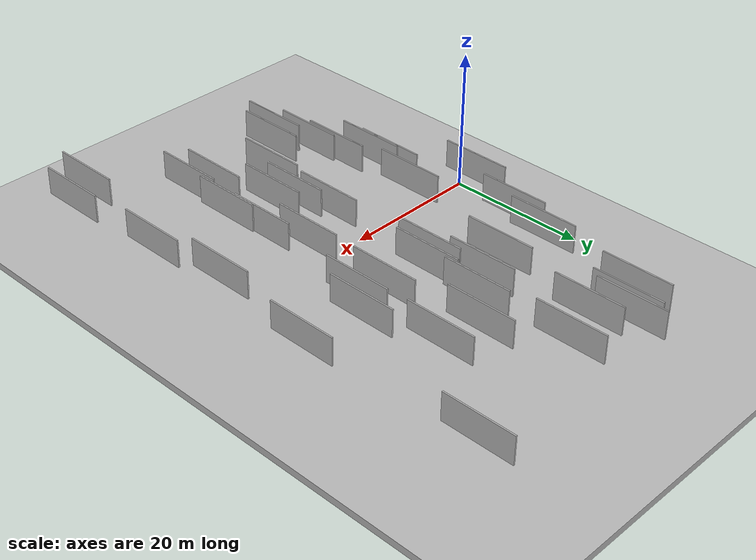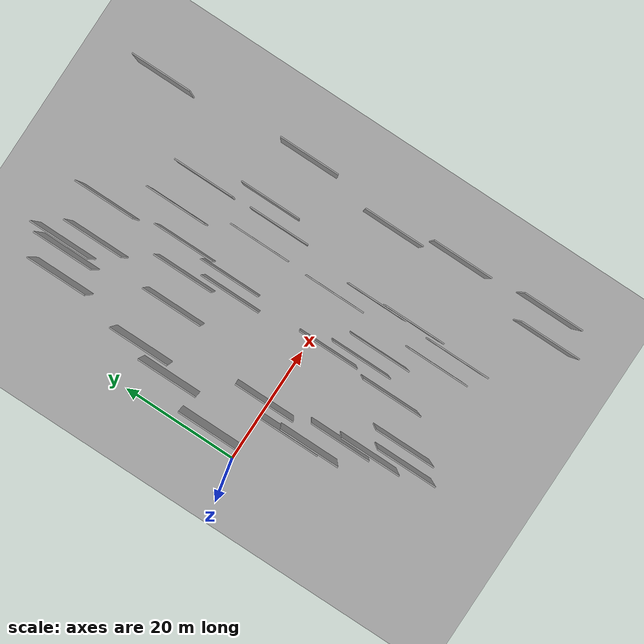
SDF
<?xml version="1.0" encoding="utf-8"?>

<sdf version="1.6">

   <world name="default">

      <gui fullscreen="0">

         <camera name="user_camera">

            <pose>-15 0 4.57585 0 0 0</pose>

            <view_controller>orbit</view_controller>

         </camera>

      </gui>

      <scene>

         <sky>

           <clouds>

             <speed>12</speed>

           </clouds>

         </sky>

         <ambient>0.4 0.4 0.4 1</ambient>

         <background>0.7 0.7 0.7 1</background>

         <shadows>1</shadows>

      </scene>

      <gravity>0 0 -9.8066</gravity>

      <magnetic_field>6e-06 2.3e-05 -4.2e-05</magnetic_field>

      <physics default="0" name="default_physics" type="ode">

         <ode>

            <solver>

               <type>quick</type>

               <iters>10</iters>

               <sor>1.0</sor>

               <use_dynamic_moi_rescaling>0</use_dynamic_moi_rescaling>

            </solver>

            <constraints>

               <cfm>0</cfm>

               <erp>0.2</erp>

               <contact_max_correcting_vel>100</contact_max_correcting_vel>

               <contact_surface_layer>0.001</contact_surface_layer>

            </constraints>

         </ode>

         <max_step_size>0.004</max_step_size>

         <real_time_factor>1</real_time_factor>

         <real_time_update_rate>250</real_time_update_rate>

      </physics>

      <light name="sun" type="directional">

         <cast_shadows>1</cast_shadows>

         <pose>0 0 10 0 0 0</pose>

         <diffuse>0.8 0.8 0.8 1</diffuse>

         <specular>0.2 0.2 0.2 1</specular>

         <attenuation>

            <range>1000</range>

            <constant>0.9</constant>

            <linear>0.01</linear>

            <quadratic>0.001</quadratic>

         </attenuation>

         <direction>-0.5 0.1 -0.9</direction>

      </light>

      <include>

         <name>ground_plane_1</name>

         <uri>model://HANNAS_ground_plane</uri>

         <pose>0 0 0  0 0 0</pose>

      </include>

      <include>

         <name>ground_plane_2</name>

         <uri>model://HANNAS_ground_plane</uri>

         <pose>100 0 0  0 0 0</pose>

      </include>

      <model name="HANNAS_wall_1">

         <static>1</static>

         <pose frame="">22.5671 -13.8953 5.0 0.000000 0.000000 1.570796</pose>

         <link name="link">

            <pose frame="">0 0 2.00 0 0 0</pose>

            <collision name="collision">

               <geometry>

                  <box>

                     <size>10.00 0.2 4.00</size>

                  </box>

               </geometry>

               <max_contacts>10</max_contacts>

               <surface>

                  <contact>

                     <ode/>

                  </contact>

                  <bounce/>

                  <friction>

                     <torsional>

                        <ode/>

                     </torsional>

                     <ode/>

                  </friction>

               </surface>

            </collision>

            <visual name="visual">

               <cast_shadows>0</cast_shadows>

               <geometry>

                  <box>

                     <size>10.00 0.2 4.00</size>

                  </box>

               </geometry>

               <material>

                  <script>

                     <uri>model://HANNAS_wall/materials/scripts</uri>

                     <uri>model://HANNAS_wall/materials/textures</uri>

                     <name>vrc/HANNAS_wall</name>

                  </script>

               </material>

            </visual>

            <self_collide>0</self_collide>

            <enable_wind>0</enable_wind>

            <kinematic>0</kinematic>

         </link>

      </model>

      <model name="HANNAS_wall_2">

         <static>1</static>

         <pose frame="">17.4820 -19.4743 5.0 0.000000 0.000000 1.570796</pose>

         <link name="link">

            <pose frame="">0 0 2.00 0 0 0</pose>

            <collision name="collision">

               <geometry>

                  <box>

                     <size>10.00 0.2 4.00</size>

                  </box>

               </geometry>

               <max_contacts>10</max_contacts>

               <surface>

                  <contact>

                     <ode/>

                  </contact>

                  <bounce/>

                  <friction>

                     <torsional>

                        <ode/>

                     </torsional>

                     <ode/>

                  </friction>

               </surface>

            </collision>

            <visual name="visual">

               <cast_shadows>0</cast_shadows>

               <geometry>

                  <box>

                     <size>10.00 0.2 4.00</size>

                  </box>

               </geometry>

               <material>

                  <script>

                     <uri>model://HANNAS_wall/materials/scripts</uri>

                     <uri>model://HANNAS_wall/materials/textures</uri>

                     <name>vrc/HANNAS_wall</name>

                  </script>

               </material>

            </visual>

            <self_collide>0</self_collide>

            <enable_wind>0</enable_wind>

            <kinematic>0</kinematic>

         </link>

      </model>

      <model name="HANNAS_wall_3">

         <static>1</static>

         <pose frame="">13.1034 -11.2029 5.0 0.000000 0.000000 1.570796</pose>

         <link name="link">

            <pose frame="">0 0 2.00 0 0 0</pose>

            <collision name="collision">

               <geometry>

                  <box>

                     <size>10.00 0.2 4.00</size>

                  </box>

               </geometry>

               <max_contacts>10</max_contacts>

               <surface>

                  <contact>

                     <ode/>

                  </contact>

                  <bounce/>

                  <friction>

                     <torsional>

                        <ode/>

                     </torsional>

                     <ode/>

                  </friction>

               </surface>

            </collision>

            <visual name="visual">

               <cast_shadows>0</cast_shadows>

               <geometry>

                  <box>

                     <size>10.00 0.2 4.00</size>

                  </box>

               </geometry>

               <material>

                  <script>

                     <uri>model://HANNAS_wall/materials/scripts</uri>

                     <uri>model://HANNAS_wall/materials/textures</uri>

                     <name>vrc/HANNAS_wall</name>

                  </script>

               </material>

            </visual>

            <self_collide>0</self_collide>

            <enable_wind>0</enable_wind>

            <kinematic>0</kinematic>

         </link>

      </model>

      <model name="HANNAS_wall_4">

         <static>1</static>

         <pose frame="">15.1864 38.8526 5.0 0.000000 0.000000 1.570796</pose>

         <link name="link">

            <pose frame="">0 0 2.00 0 0 0</pose>

            <collision name="collision">

               <geometry>

                  <box>

                     <size>10.00 0.2 4.00</size>

                  </box>

               </geometry>

               <max_contacts>10</max_contacts>

               <surface>

                  <contact>

                     <ode/>

                  </contact>

                  <bounce/>

                  <friction>

                     <torsional>

                        <ode/>

                     </torsional>

                     <ode/>

                  </friction>

               </surface>

            </collision>

            <visual name="visual">

               <cast_shadows>0</cast_shadows>

               <geometry>

                  <box>

                     <size>10.00 0.2 4.00</size>

                  </box>

               </geometry>

               <material>

                  <script>

                     <uri>model://HANNAS_wall/materials/scripts</uri>

                     <uri>model://HANNAS_wall/materials/textures</uri>

                     <name>vrc/HANNAS_wall</name>

                  </script>

               </material>

            </visual>

            <self_collide>0</self_collide>

            <enable_wind>0</enable_wind>

            <kinematic>0</kinematic>

         </link>

      </model>

      <model name="HANNAS_wall_5">

         <static>1</static>

         <pose frame="">24.1612 15.2622 5.0 0.000000 0.000000 1.570796</pose>

         <link name="link">

            <pose frame="">0 0 2.00 0 0 0</pose>

            <collision name="collision">

               <geometry>

                  <box>

                     <size>10.00 0.2 4.00</size>

                  </box>

               </geometry>

               <max_contacts>10</max_contacts>

               <surface>

                  <contact>

                     <ode/>

                  </contact>

                  <bounce/>

                  <friction>

                     <torsional>

                        <ode/>

                     </torsional>

                     <ode/>

                  </friction>

               </surface>

            </collision>

            <visual name="visual">

               <cast_shadows>0</cast_shadows>

               <geometry>

                  <box>

                     <size>10.00 0.2 4.00</size>

                  </box>

               </geometry>

               <material>

                  <script>

                     <uri>model://HANNAS_wall/materials/scripts</uri>

                     <uri>model://HANNAS_wall/materials/textures</uri>

                     <name>vrc/HANNAS_wall</name>

                  </script>

               </material>

            </visual>

            <self_collide>0</self_collide>

            <enable_wind>0</enable_wind>

            <kinematic>0</kinematic>

         </link>

      </model>

      <model name="HANNAS_wall_6">

         <static>1</static>

         <pose frame="">9.6390 -4.5361 5.0 0.000000 0.000000 1.570796</pose>

         <link name="link">

            <pose frame="">0 0 2.00 0 0 0</pose>

            <collision name="collision">

               <geometry>

                  <box>

                     <size>10.00 0.2 4.00</size>

                  </box>

               </geometry>

               <max_contacts>10</max_contacts>

               <surface>

                  <contact>

                     <ode/>

                  </contact>

                  <bounce/>

                  <friction>

                     <torsional>

                        <ode/>

                     </torsional>

                     <ode/>

                  </friction>

               </surface>

            </collision>

            <visual name="visual">

               <cast_shadows>0</cast_shadows>

               <geometry>

                  <box>

                     <size>10.00 0.2 4.00</size>

                  </box>

               </geometry>

               <material>

                  <script>

                     <uri>model://HANNAS_wall/materials/scripts</uri>

                     <uri>model://HANNAS_wall/materials/textures</uri>

                     <name>vrc/HANNAS_wall</name>

                  </script>

               </material>

            </visual>

            <self_collide>0</self_collide>

            <enable_wind>0</enable_wind>

            <kinematic>0</kinematic>

         </link>

      </model>

      <model name="HANNAS_wall_7">

         <static>1</static>

         <pose frame="">9.9034 -7.8861 5.0 0.000000 0.000000 1.570796</pose>

         <link name="link">

            <pose frame="">0 0 2.00 0 0 0</pose>

            <collision name="collision">

               <geometry>

                  <box>

                     <size>10.00 0.2 4.00</size>

                  </box>

               </geometry>

               <max_contacts>10</max_contacts>

               <surface>

                  <contact>

                     <ode/>

                  </contact>

                  <bounce/>

                  <friction>

                     <torsional>

                        <ode/>

                     </torsional>

                     <ode/>

                  </friction>

               </surface>

            </collision>

            <visual name="visual">

               <cast_shadows>0</cast_shadows>

               <geometry>

                  <box>

                     <size>10.00 0.2 4.00</size>

                  </box>

               </geometry>

               <material>

                  <script>

                     <uri>model://HANNAS_wall/materials/scripts</uri>

                     <uri>model://HANNAS_wall/materials/textures</uri>

                     <name>vrc/HANNAS_wall</name>

                  </script>

               </material>

            </visual>

            <self_collide>0</self_collide>

            <enable_wind>0</enable_wind>

            <kinematic>0</kinematic>

         </link>

      </model>

      <model name="HANNAS_wall_8">

         <static>1</static>

         <pose frame="">28.6589 27.5822 5.0 0.000000 0.000000 1.570796</pose>

         <link name="link">

            <pose frame="">0 0 2.00 0 0 0</pose>

            <collision name="collision">

               <geometry>

                  <box>

                     <size>10.00 0.2 4.00</size>

                  </box>

               </geometry>

               <max_contacts>10</max_contacts>

               <surface>

                  <contact>

                     <ode/>

                  </contact>

                  <bounce/>

                  <friction>

                     <torsional>

                        <ode/>

                     </torsional>

                     <ode/>

                  </friction>

               </surface>

            </collision>

            <visual name="visual">

               <cast_shadows>0</cast_shadows>

               <geometry>

                  <box>

                     <size>10.00 0.2 4.00</size>

                  </box>

               </geometry>

               <material>

                  <script>

                     <uri>model://HANNAS_wall/materials/scripts</uri>

                     <uri>model://HANNAS_wall/materials/textures</uri>

                     <name>vrc/HANNAS_wall</name>

                  </script>

               </material>

            </visual>

            <self_collide>0</self_collide>

            <enable_wind>0</enable_wind>

            <kinematic>0</kinematic>

         </link>

      </model>

      <model name="HANNAS_wall_9">

         <static>1</static>

         <pose frame="">42.0849 -28.4676 5.0 0.000000 0.000000 1.570796</pose>

         <link name="link">

            <pose frame="">0 0 2.00 0 0 0</pose>

            <collision name="collision">

               <geometry>

                  <box>

                     <size>10.00 0.2 4.00</size>

                  </box>

               </geometry>

               <max_contacts>10</max_contacts>

               <surface>

                  <contact>

                     <ode/>

                  </contact>

                  <bounce/>

                  <friction>

                     <torsional>

                        <ode/>

                     </torsional>

                     <ode/>

                  </friction>

               </surface>

            </collision>

            <visual name="visual">

               <cast_shadows>0</cast_shadows>

               <geometry>

                  <box>

                     <size>10.00 0.2 4.00</size>

                  </box>

               </geometry>

               <material>

                  <script>

                     <uri>model://HANNAS_wall/materials/scripts</uri>

                     <uri>model://HANNAS_wall/materials/textures</uri>

                     <name>vrc/HANNAS_wall</name>

                  </script>

               </material>

            </visual>

            <self_collide>0</self_collide>

            <enable_wind>0</enable_wind>

            <kinematic>0</kinematic>

         </link>

      </model>

      <model name="HANNAS_wall_10">

         <static>1</static>

         <pose frame="">27.0926 -8.9381 5.0 0.000000 0.000000 1.570796</pose>

         <link name="link">

            <pose frame="">0 0 2.00 0 0 0</pose>

            <collision name="collision">

               <geometry>

                  <box>

                     <size>10.00 0.2 4.00</size>

                  </box>

               </geometry>

               <max_contacts>10</max_contacts>

               <surface>

                  <contact>

                     <ode/>

                  </contact>

                  <bounce/>

                  <friction>

                     <torsional>

                        <ode/>

                     </torsional>

                     <ode/>

                  </friction>

               </surface>

            </collision>

            <visual name="visual">

               <cast_shadows>0</cast_shadows>

               <geometry>

                  <box>

                     <size>10.00 0.2 4.00</size>

                  </box>

               </geometry>

               <material>

                  <script>

                     <uri>model://HANNAS_wall/materials/scripts</uri>

                     <uri>model://HANNAS_wall/materials/textures</uri>

                     <name>vrc/HANNAS_wall</name>

                  </script>

               </material>

            </visual>

            <self_collide>0</self_collide>

            <enable_wind>0</enable_wind>

            <kinematic>0</kinematic>

         </link>

      </model>

      <model name="HANNAS_wall_11">

         <static>1</static>

         <pose frame="">16.0108 19.9428 5.0 0.000000 0.000000 1.570796</pose>

         <link name="link">

            <pose frame="">0 0 2.00 0 0 0</pose>

            <collision name="collision">

               <geometry>

                  <box>

                     <size>10.00 0.2 4.00</size>

                  </box>

               </geometry>

               <max_contacts>10</max_contacts>

               <surface>

                  <contact>

                     <ode/>

                  </contact>

                  <bounce/>

                  <friction>

                     <torsional>

                        <ode/>

                     </torsional>

                     <ode/>

                  </friction>

               </surface>

            </collision>

            <visual name="visual">

               <cast_shadows>0</cast_shadows>

               <geometry>

                  <box>

                     <size>10.00 0.2 4.00</size>

                  </box>

               </geometry>

               <material>

                  <script>

                     <uri>model://HANNAS_wall/materials/scripts</uri>

                     <uri>model://HANNAS_wall/materials/textures</uri>

                     <name>vrc/HANNAS_wall</name>

                  </script>

               </material>

            </visual>

            <self_collide>0</self_collide>

            <enable_wind>0</enable_wind>

            <kinematic>0</kinematic>

         </link>

      </model>

      <model name="HANNAS_wall_12">

         <static>1</static>

         <pose frame="">44.9426 -11.4799 5.0 0.000000 0.000000 1.570796</pose>

         <link name="link">

            <pose frame="">0 0 2.00 0 0 0</pose>

            <collision name="collision">

               <geometry>

                  <box>

                     <size>10.00 0.2 4.00</size>

                  </box>

               </geometry>

               <max_contacts>10</max_contacts>

               <surface>

                  <contact>

                     <ode/>

                  </contact>

                  <bounce/>

                  <friction>

                     <torsional>

                        <ode/>

                     </torsional>

                     <ode/>

                  </friction>

               </surface>

            </collision>

            <visual name="visual">

               <cast_shadows>0</cast_shadows>

               <geometry>

                  <box>

                     <size>10.00 0.2 4.00</size>

                  </box>

               </geometry>

               <material>

                  <script>

                     <uri>model://HANNAS_wall/materials/scripts</uri>

                     <uri>model://HANNAS_wall/materials/textures</uri>

                     <name>vrc/HANNAS_wall</name>

                  </script>

               </material>

            </visual>

            <self_collide>0</self_collide>

            <enable_wind>0</enable_wind>

            <kinematic>0</kinematic>

         </link>

      </model>

      <model name="HANNAS_wall_13">

         <static>1</static>

         <pose frame="">24.7509 23.6369 5.0 0.000000 0.000000 1.570796</pose>

         <link name="link">

            <pose frame="">0 0 2.00 0 0 0</pose>

            <collision name="collision">

               <geometry>

                  <box>

                     <size>10.00 0.2 4.00</size>

                  </box>

               </geometry>

               <max_contacts>10</max_contacts>

               <surface>

                  <contact>

                     <ode/>

                  </contact>

                  <bounce/>

                  <friction>

                     <torsional>

                        <ode/>

                     </torsional>

                     <ode/>

                  </friction>

               </surface>

            </collision>

            <visual name="visual">

               <cast_shadows>0</cast_shadows>

               <geometry>

                  <box>

                     <size>10.00 0.2 4.00</size>

                  </box>

               </geometry>

               <material>

                  <script>

                     <uri>model://HANNAS_wall/materials/scripts</uri>

                     <uri>model://HANNAS_wall/materials/textures</uri>

                     <name>vrc/HANNAS_wall</name>

                  </script>

               </material>

            </visual>

            <self_collide>0</self_collide>

            <enable_wind>0</enable_wind>

            <kinematic>0</kinematic>

         </link>

      </model>

      <model name="HANNAS_wall_14">

         <static>1</static>

         <pose frame="">32.5789 -19.0043 5.0 0.000000 0.000000 1.570796</pose>

         <link name="link">

            <pose frame="">0 0 2.00 0 0 0</pose>

            <collision name="collision">

               <geometry>

                  <box>

                     <size>10.00 0.2 4.00</size>

                  </box>

               </geometry>

               <max_contacts>10</max_contacts>

               <surface>

                  <contact>

                     <ode/>

                  </contact>

                  <bounce/>

                  <friction>

                     <torsional>

                        <ode/>

                     </torsional>

                     <ode/>

                  </friction>

               </surface>

            </collision>

            <visual name="visual">

               <cast_shadows>0</cast_shadows>

               <geometry>

                  <box>

                     <size>10.00 0.2 4.00</size>

                  </box>

               </geometry>

               <material>

                  <script>

                     <uri>model://HANNAS_wall/materials/scripts</uri>

                     <uri>model://HANNAS_wall/materials/textures</uri>

                     <name>vrc/HANNAS_wall</name>

                  </script>

               </material>

            </visual>

            <self_collide>0</self_collide>

            <enable_wind>0</enable_wind>

            <kinematic>0</kinematic>

         </link>

      </model>

      <model name="HANNAS_wall_15">

         <static>1</static>

         <pose frame="">29.9347 -17.1000 5.0 0.000000 0.000000 1.570796</pose>

         <link name="link">

            <pose frame="">0 0 2.00 0 0 0</pose>

            <collision name="collision">

               <geometry>

                  <box>

                     <size>10.00 0.2 4.00</size>

                  </box>

               </geometry>

               <max_contacts>10</max_contacts>

               <surface>

                  <contact>

                     <ode/>

                  </contact>

                  <bounce/>

                  <friction>

                     <torsional>

                        <ode/>

                     </torsional>

                     <ode/>

                  </friction>

               </surface>

            </collision>

            <visual name="visual">

               <cast_shadows>0</cast_shadows>

               <geometry>

                  <box>

                     <size>10.00 0.2 4.00</size>

                  </box>

               </geometry>

               <material>

                  <script>

                     <uri>model://HANNAS_wall/materials/scripts</uri>

                     <uri>model://HANNAS_wall/materials/textures</uri>

                     <name>vrc/HANNAS_wall</name>

                  </script>

               </material>

            </visual>

            <self_collide>0</self_collide>

            <enable_wind>0</enable_wind>

            <kinematic>0</kinematic>

         </link>

      </model>

      <model name="HANNAS_wall_16">

         <static>1</static>

         <pose frame="">8.6251 20.7862 5.0 0.000000 0.000000 1.570796</pose>

         <link name="link">

            <pose frame="">0 0 2.00 0 0 0</pose>

            <collision name="collision">

               <geometry>

                  <box>

                     <size>10.00 0.2 4.00</size>

                  </box>

               </geometry>

               <max_contacts>10</max_contacts>

               <surface>

                  <contact>

                     <ode/>

                  </contact>

                  <bounce/>

                  <friction>

                     <torsional>

                        <ode/>

                     </torsional>

                     <ode/>

                  </friction>

               </surface>

            </collision>

            <visual name="visual">

               <cast_shadows>0</cast_shadows>

               <geometry>

                  <box>

                     <size>10.00 0.2 4.00</size>

                  </box>

               </geometry>

               <material>

                  <script>

                     <uri>model://HANNAS_wall/materials/scripts</uri>

                     <uri>model://HANNAS_wall/materials/textures</uri>

                     <name>vrc/HANNAS_wall</name>

                  </script>

               </material>

            </visual>

            <self_collide>0</self_collide>

            <enable_wind>0</enable_wind>

            <kinematic>0</kinematic>

         </link>

      </model>

      <model name="HANNAS_wall_17">

         <static>1</static>

         <pose frame="">30.5700 1.2881 5.0 0.000000 0.000000 1.570796</pose>

         <link name="link">

            <pose frame="">0 0 2.00 0 0 0</pose>

            <collision name="collision">

               <geometry>

                  <box>

                     <size>10.00 0.2 4.00</size>

                  </box>

               </geometry>

               <max_contacts>10</max_contacts>

               <surface>

                  <contact>

                     <ode/>

                  </contact>

                  <bounce/>

                  <friction>

                     <torsional>

                        <ode/>

                     </torsional>

                     <ode/>

                  </friction>

               </surface>

            </collision>

            <visual name="visual">

               <cast_shadows>0</cast_shadows>

               <geometry>

                  <box>

                     <size>10.00 0.2 4.00</size>

                  </box>

               </geometry>

               <material>

                  <script>

                     <uri>model://HANNAS_wall/materials/scripts</uri>

                     <uri>model://HANNAS_wall/materials/textures</uri>

                     <name>vrc/HANNAS_wall</name>

                  </script>

               </material>

            </visual>

            <self_collide>0</self_collide>

            <enable_wind>0</enable_wind>

            <kinematic>0</kinematic>

         </link>

      </model>

      <model name="HANNAS_wall_18">

         <static>1</static>

         <pose frame="">32.9697 -4.5958 5.0 0.000000 0.000000 1.570796</pose>

         <link name="link">

            <pose frame="">0 0 2.00 0 0 0</pose>

            <collision name="collision">

               <geometry>

                  <box>

                     <size>10.00 0.2 4.00</size>

                  </box>

               </geometry>

               <max_contacts>10</max_contacts>

               <surface>

                  <contact>

                     <ode/>

                  </contact>

                  <bounce/>

                  <friction>

                     <torsional>

                        <ode/>

                     </torsional>

                     <ode/>

                  </friction>

               </surface>

            </collision>

            <visual name="visual">

               <cast_shadows>0</cast_shadows>

               <geometry>

                  <box>

                     <size>10.00 0.2 4.00</size>

                  </box>

               </geometry>

               <material>

                  <script>

                     <uri>model://HANNAS_wall/materials/scripts</uri>

                     <uri>model://HANNAS_wall/materials/textures</uri>

                     <name>vrc/HANNAS_wall</name>

                  </script>

               </material>

            </visual>

            <self_collide>0</self_collide>

            <enable_wind>0</enable_wind>

            <kinematic>0</kinematic>

         </link>

      </model>

      <model name="HANNAS_wall_19">

         <static>1</static>

         <pose frame="">10.5692 36.3006 5.0 0.000000 0.000000 1.570796</pose>

         <link name="link">

            <pose frame="">0 0 2.00 0 0 0</pose>

            <collision name="collision">

               <geometry>

                  <box>

                     <size>10.00 0.2 4.00</size>

                  </box>

               </geometry>

               <max_contacts>10</max_contacts>

               <surface>

                  <contact>

                     <ode/>

                  </contact>

                  <bounce/>

                  <friction>

                     <torsional>

                        <ode/>

                     </torsional>

                     <ode/>

                  </friction>

               </surface>

            </collision>

            <visual name="visual">

               <cast_shadows>0</cast_shadows>

               <geometry>

                  <box>

                     <size>10.00 0.2 4.00</size>

                  </box>

               </geometry>

               <material>

                  <script>

                     <uri>model://HANNAS_wall/materials/scripts</uri>

                     <uri>model://HANNAS_wall/materials/textures</uri>

                     <name>vrc/HANNAS_wall</name>

                  </script>

               </material>

            </visual>

            <self_collide>0</self_collide>

            <enable_wind>0</enable_wind>

            <kinematic>0</kinematic>

         </link>

      </model>

      <model name="HANNAS_wall_20">

         <static>1</static>

         <pose frame="">3.9228 5.8238 5.0 0.000000 0.000000 1.570796</pose>

         <link name="link">

            <pose frame="">0 0 2.00 0 0 0</pose>

            <collision name="collision">

               <geometry>

                  <box>

                     <size>10.00 0.2 4.00</size>

                  </box>

               </geometry>

               <max_contacts>10</max_contacts>

               <surface>

                  <contact>

                     <ode/>

                  </contact>

                  <bounce/>

                  <friction>

                     <torsional>

                        <ode/>

                     </torsional>

                     <ode/>

                  </friction>

               </surface>

            </collision>

            <visual name="visual">

               <cast_shadows>0</cast_shadows>

               <geometry>

                  <box>

                     <size>10.00 0.2 4.00</size>

                  </box>

               </geometry>

               <material>

                  <script>

                     <uri>model://HANNAS_wall/materials/scripts</uri>

                     <uri>model://HANNAS_wall/materials/textures</uri>

                     <name>vrc/HANNAS_wall</name>

                  </script>

               </material>

            </visual>

            <self_collide>0</self_collide>

            <enable_wind>0</enable_wind>

            <kinematic>0</kinematic>

         </link>

      </model>

      <model name="HANNAS_wall_21">

         <static>1</static>

         <pose frame="">45.8006 -26.5780 5.0 0.000000 0.000000 1.570796</pose>

         <link name="link">

            <pose frame="">0 0 2.00 0 0 0</pose>

            <collision name="collision">

               <geometry>

                  <box>

                     <size>10.00 0.2 4.00</size>

                  </box>

               </geometry>

               <max_contacts>10</max_contacts>

               <surface>

                  <contact>

                     <ode/>

                  </contact>

                  <bounce/>

                  <friction>

                     <torsional>

                        <ode/>

                     </torsional>

                     <ode/>

                  </friction>

               </surface>

            </collision>

            <visual name="visual">

               <cast_shadows>0</cast_shadows>

               <geometry>

                  <box>

                     <size>10.00 0.2 4.00</size>

                  </box>

               </geometry>

               <material>

                  <script>

                     <uri>model://HANNAS_wall/materials/scripts</uri>

                     <uri>model://HANNAS_wall/materials/textures</uri>

                     <name>vrc/HANNAS_wall</name>

                  </script>

               </material>

            </visual>

            <self_collide>0</self_collide>

            <enable_wind>0</enable_wind>

            <kinematic>0</kinematic>

         </link>

      </model>

      <model name="HANNAS_wall_22">

         <static>1</static>

         <pose frame="">24.7265 -7.2503 5.0 0.000000 0.000000 1.570796</pose>

         <link name="link">

            <pose frame="">0 0 2.00 0 0 0</pose>

            <collision name="collision">

               <geometry>

                  <box>

                     <size>10.00 0.2 4.00</size>

                  </box>

               </geometry>

               <max_contacts>10</max_contacts>

               <surface>

                  <contact>

                     <ode/>

                  </contact>

                  <bounce/>

                  <friction>

                     <torsional>

                        <ode/>

                     </torsional>

                     <ode/>

                  </friction>

               </surface>

            </collision>

            <visual name="visual">

               <cast_shadows>0</cast_shadows>

               <geometry>

                  <box>

                     <size>10.00 0.2 4.00</size>

                  </box>

               </geometry>

               <material>

                  <script>

                     <uri>model://HANNAS_wall/materials/scripts</uri>

                     <uri>model://HANNAS_wall/materials/textures</uri>

                     <name>vrc/HANNAS_wall</name>

                  </script>

               </material>

            </visual>

            <self_collide>0</self_collide>

            <enable_wind>0</enable_wind>

            <kinematic>0</kinematic>

         </link>

      </model>

      <model name="HANNAS_wall_23">

         <static>1</static>

         <pose frame="">43.3423 -0.6742 5.0 0.000000 0.000000 1.570796</pose>

         <link name="link">

            <pose frame="">0 0 2.00 0 0 0</pose>

            <collision name="collision">

               <geometry>

                  <box>

                     <size>10.00 0.2 4.00</size>

                  </box>

               </geometry>

               <max_contacts>10</max_contacts>

               <surface>

                  <contact>

                     <ode/>

                  </contact>

                  <bounce/>

                  <friction>

                     <torsional>

                        <ode/>

                     </torsional>

                     <ode/>

                  </friction>

               </surface>

            </collision>

            <visual name="visual">

               <cast_shadows>0</cast_shadows>

               <geometry>

                  <box>

                     <size>10.00 0.2 4.00</size>

                  </box>

               </geometry>

               <material>

                  <script>

                     <uri>model://HANNAS_wall/materials/scripts</uri>

                     <uri>model://HANNAS_wall/materials/textures</uri>

                     <name>vrc/HANNAS_wall</name>

                  </script>

               </material>

            </visual>

            <self_collide>0</self_collide>

            <enable_wind>0</enable_wind>

            <kinematic>0</kinematic>

         </link>

      </model>

      <model name="HANNAS_wall_24">

         <static>1</static>

         <pose frame="">33.2160 -10.9055 5.0 0.000000 0.000000 1.570796</pose>

         <link name="link">

            <pose frame="">0 0 2.00 0 0 0</pose>

            <collision name="collision">

               <geometry>

                  <box>

                     <size>10.00 0.2 4.00</size>

                  </box>

               </geometry>

               <max_contacts>10</max_contacts>

               <surface>

                  <contact>

                     <ode/>

                  </contact>

                  <bounce/>

                  <friction>

                     <torsional>

                        <ode/>

                     </torsional>

                     <ode/>

                  </friction>

               </surface>

            </collision>

            <visual name="visual">

               <cast_shadows>0</cast_shadows>

               <geometry>

                  <box>

                     <size>10.00 0.2 4.00</size>

                  </box>

               </geometry>

               <material>

                  <script>

                     <uri>model://HANNAS_wall/materials/scripts</uri>

                     <uri>model://HANNAS_wall/materials/textures</uri>

                     <name>vrc/HANNAS_wall</name>

                  </script>

               </material>

            </visual>

            <self_collide>0</self_collide>

            <enable_wind>0</enable_wind>

            <kinematic>0</kinematic>

         </link>

      </model>

      <model name="HANNAS_wall_25">

         <static>1</static>

         <pose frame="">18.0385 34.9172 5.0 0.000000 0.000000 1.570796</pose>

         <link name="link">

            <pose frame="">0 0 2.00 0 0 0</pose>

            <collision name="collision">

               <geometry>

                  <box>

                     <size>10.00 0.2 4.00</size>

                  </box>

               </geometry>

               <max_contacts>10</max_contacts>

               <surface>

                  <contact>

                     <ode/>

                  </contact>

                  <bounce/>

                  <friction>

                     <torsional>

                        <ode/>

                     </torsional>

                     <ode/>

                  </friction>

               </surface>

            </collision>

            <visual name="visual">

               <cast_shadows>0</cast_shadows>

               <geometry>

                  <box>

                     <size>10.00 0.2 4.00</size>

                  </box>

               </geometry>

               <material>

                  <script>

                     <uri>model://HANNAS_wall/materials/scripts</uri>

                     <uri>model://HANNAS_wall/materials/textures</uri>

                     <name>vrc/HANNAS_wall</name>

                  </script>

               </material>

            </visual>

            <self_collide>0</self_collide>

            <enable_wind>0</enable_wind>

            <kinematic>0</kinematic>

         </link>

      </model>

      <model name="HANNAS_wall_26">

         <static>1</static>

         <pose frame="">34.1529 26.3153 5.0 0.000000 0.000000 1.570796</pose>

         <link name="link">

            <pose frame="">0 0 2.00 0 0 0</pose>

            <collision name="collision">

               <geometry>

                  <box>

                     <size>10.00 0.2 4.00</size>

                  </box>

               </geometry>

               <max_contacts>10</max_contacts>

               <surface>

                  <contact>

                     <ode/>

                  </contact>

                  <bounce/>

                  <friction>

                     <torsional>

                        <ode/>

                     </torsional>

                     <ode/>

                  </friction>

               </surface>

            </collision>

            <visual name="visual">

               <cast_shadows>0</cast_shadows>

               <geometry>

                  <box>

                     <size>10.00 0.2 4.00</size>

                  </box>

               </geometry>

               <material>

                  <script>

                     <uri>model://HANNAS_wall/materials/scripts</uri>

                     <uri>model://HANNAS_wall/materials/textures</uri>

                     <name>vrc/HANNAS_wall</name>

                  </script>

               </material>

            </visual>

            <self_collide>0</self_collide>

            <enable_wind>0</enable_wind>

            <kinematic>0</kinematic>

         </link>

      </model>

      <model name="HANNAS_wall_27">

         <static>1</static>

         <pose frame="">34.3565 13.3661 5.0 0.000000 0.000000 1.570796</pose>

         <link name="link">

            <pose frame="">0 0 2.00 0 0 0</pose>

            <collision name="collision">

               <geometry>

                  <box>

                     <size>10.00 0.2 4.00</size>

                  </box>

               </geometry>

               <max_contacts>10</max_contacts>

               <surface>

                  <contact>

                     <ode/>

                  </contact>

                  <bounce/>

                  <friction>

                     <torsional>

                        <ode/>

                     </torsional>

                     <ode/>

                  </friction>

               </surface>

            </collision>

            <visual name="visual">

               <cast_shadows>0</cast_shadows>

               <geometry>

                  <box>

                     <size>10.00 0.2 4.00</size>

                  </box>

               </geometry>

               <material>

                  <script>

                     <uri>model://HANNAS_wall/materials/scripts</uri>

                     <uri>model://HANNAS_wall/materials/textures</uri>

                     <name>vrc/HANNAS_wall</name>

                  </script>

               </material>

            </visual>

            <self_collide>0</self_collide>

            <enable_wind>0</enable_wind>

            <kinematic>0</kinematic>

         </link>

      </model>

      <model name="HANNAS_wall_28">

         <static>1</static>

         <pose frame="">13.7153 -15.9915 5.0 0.000000 0.000000 1.570796</pose>

         <link name="link">

            <pose frame="">0 0 2.00 0 0 0</pose>

            <collision name="collision">

               <geometry>

                  <box>

                     <size>10.00 0.2 4.00</size>

                  </box>

               </geometry>

               <max_contacts>10</max_contacts>

               <surface>

                  <contact>

                     <ode/>

                  </contact>

                  <bounce/>

                  <friction>

                     <torsional>

                        <ode/>

                     </torsional>

                     <ode/>

                  </friction>

               </surface>

            </collision>

            <visual name="visual">

               <cast_shadows>0</cast_shadows>

               <geometry>

                  <box>

                     <size>10.00 0.2 4.00</size>

                  </box>

               </geometry>

               <material>

                  <script>

                     <uri>model://HANNAS_wall/materials/scripts</uri>

                     <uri>model://HANNAS_wall/materials/textures</uri>

                     <name>vrc/HANNAS_wall</name>

                  </script>

               </material>

            </visual>

            <self_collide>0</self_collide>

            <enable_wind>0</enable_wind>

            <kinematic>0</kinematic>

         </link>

      </model>

      <model name="HANNAS_wall_29">

         <static>1</static>

         <pose frame="">23.6483 36.6130 5.0 0.000000 0.000000 1.570796</pose>

         <link name="link">

            <pose frame="">0 0 2.00 0 0 0</pose>

            <collision name="collision">

               <geometry>

                  <box>

                     <size>10.00 0.2 4.00</size>

                  </box>

               </geometry>

               <max_contacts>10</max_contacts>

               <surface>

                  <contact>

                     <ode/>

                  </contact>

                  <bounce/>

                  <friction>

                     <torsional>

                        <ode/>

                     </torsional>

                     <ode/>

                  </friction>

               </surface>

            </collision>

            <visual name="visual">

               <cast_shadows>0</cast_shadows>

               <geometry>

                  <box>

                     <size>10.00 0.2 4.00</size>

                  </box>

               </geometry>

               <material>

                  <script>

                     <uri>model://HANNAS_wall/materials/scripts</uri>

                     <uri>model://HANNAS_wall/materials/textures</uri>

                     <name>vrc/HANNAS_wall</name>

                  </script>

               </material>

            </visual>

            <self_collide>0</self_collide>

            <enable_wind>0</enable_wind>

            <kinematic>0</kinematic>

         </link>

      </model>

      <model name="HANNAS_wall_30">

         <static>1</static>

         <pose frame="">30.7958 14.4475 5.0 0.000000 0.000000 1.570796</pose>

         <link name="link">

            <pose frame="">0 0 2.00 0 0 0</pose>

            <collision name="collision">

               <geometry>

                  <box>

                     <size>10.00 0.2 4.00</size>

                  </box>

               </geometry>

               <max_contacts>10</max_contacts>

               <surface>

                  <contact>

                     <ode/>

                  </contact>

                  <bounce/>

                  <friction>

                     <torsional>

                        <ode/>

                     </torsional>

                     <ode/>

                  </friction>

               </surface>

            </collision>

            <visual name="visual">

               <cast_shadows>0</cast_shadows>

               <geometry>

                  <box>

                     <size>10.00 0.2 4.00</size>

                  </box>

               </geometry>

               <material>

                  <script>

                     <uri>model://HANNAS_wall/materials/scripts</uri>

                     <uri>model://HANNAS_wall/materials/textures</uri>

                     <name>vrc/HANNAS_wall</name>

                  </script>

               </material>

            </visual>

            <self_collide>0</self_collide>

            <enable_wind>0</enable_wind>

            <kinematic>0</kinematic>

         </link>

      </model>

      <model name="HANNAS_wall_31">

         <static>1</static>

         <pose frame="">43.5248 39.8402 5.0 0.000000 0.000000 1.570796</pose>

         <link name="link">

            <pose frame="">0 0 2.00 0 0 0</pose>

            <collision name="collision">

               <geometry>

                  <box>

                     <size>10.00 0.2 4.00</size>

                  </box>

               </geometry>

               <max_contacts>10</max_contacts>

               <surface>

                  <contact>

                     <ode/>

                  </contact>

                  <bounce/>

                  <friction>

                     <torsional>

                        <ode/>

                     </torsional>

                     <ode/>

                  </friction>

               </surface>

            </collision>

            <visual name="visual">

               <cast_shadows>0</cast_shadows>

               <geometry>

                  <box>

                     <size>10.00 0.2 4.00</size>

                  </box>

               </geometry>

               <material>

                  <script>

                     <uri>model://HANNAS_wall/materials/scripts</uri>

                     <uri>model://HANNAS_wall/materials/textures</uri>

                     <name>vrc/HANNAS_wall</name>

                  </script>

               </material>

            </visual>

            <self_collide>0</self_collide>

            <enable_wind>0</enable_wind>

            <kinematic>0</kinematic>

         </link>

      </model>

      <model name="HANNAS_wall_32">

         <static>1</static>

         <pose frame="">20.9652 21.2609 5.0 0.000000 0.000000 1.570796</pose>

         <link name="link">

            <pose frame="">0 0 2.00 0 0 0</pose>

            <collision name="collision">

               <geometry>

                  <box>

                     <size>10.00 0.2 4.00</size>

                  </box>

               </geometry>

               <max_contacts>10</max_contacts>

               <surface>

                  <contact>

                     <ode/>

                  </contact>

                  <bounce/>

                  <friction>

                     <torsional>

                        <ode/>

                     </torsional>

                     <ode/>

                  </friction>

               </surface>

            </collision>

            <visual name="visual">

               <cast_shadows>0</cast_shadows>

               <geometry>

                  <box>

                     <size>10.00 0.2 4.00</size>

                  </box>

               </geometry>

               <material>

                  <script>

                     <uri>model://HANNAS_wall/materials/scripts</uri>

                     <uri>model://HANNAS_wall/materials/textures</uri>

                     <name>vrc/HANNAS_wall</name>

                  </script>

               </material>

            </visual>

            <self_collide>0</self_collide>

            <enable_wind>0</enable_wind>

            <kinematic>0</kinematic>

         </link>

      </model>

      <model name="HANNAS_wall_33">

         <static>1</static>

         <pose frame="">22.2279 13.9237 5.0 0.000000 0.000000 1.570796</pose>

         <link name="link">

            <pose frame="">0 0 2.00 0 0 0</pose>

            <collision name="collision">

               <geometry>

                  <box>

                     <size>10.00 0.2 4.00</size>

                  </box>

               </geometry>

               <max_contacts>10</max_contacts>

               <surface>

                  <contact>

                     <ode/>

                  </contact>

                  <bounce/>

                  <friction>

                     <torsional>

                        <ode/>

                     </torsional>

                     <ode/>

                  </friction>

               </surface>

            </collision>

            <visual name="visual">

               <cast_shadows>0</cast_shadows>

               <geometry>

                  <box>

                     <size>10.00 0.2 4.00</size>

                  </box>

               </geometry>

               <material>

                  <script>

                     <uri>model://HANNAS_wall/materials/scripts</uri>

                     <uri>model://HANNAS_wall/materials/textures</uri>

                     <name>vrc/HANNAS_wall</name>

                  </script>

               </material>

            </visual>

            <self_collide>0</self_collide>

            <enable_wind>0</enable_wind>

            <kinematic>0</kinematic>

         </link>

      </model>

      <model name="HANNAS_wall_34">

         <static>1</static>

         <pose frame="">7.0639 14.8399 5.0 0.000000 0.000000 1.570796</pose>

         <link name="link">

            <pose frame="">0 0 2.00 0 0 0</pose>

            <collision name="collision">

               <geometry>

                  <box>

                     <size>10.00 0.2 4.00</size>

                  </box>

               </geometry>

               <max_contacts>10</max_contacts>

               <surface>

                  <contact>

                     <ode/>

                  </contact>

                  <bounce/>

                  <friction>

                     <torsional>

                        <ode/>

                     </torsional>

                     <ode/>

                  </friction>

               </surface>

            </collision>

            <visual name="visual">

               <cast_shadows>0</cast_shadows>

               <geometry>

                  <box>

                     <size>10.00 0.2 4.00</size>

                  </box>

               </geometry>

               <material>

                  <script>

                     <uri>model://HANNAS_wall/materials/scripts</uri>

                     <uri>model://HANNAS_wall/materials/textures</uri>

                     <name>vrc/HANNAS_wall</name>

                  </script>

               </material>

            </visual>

            <self_collide>0</self_collide>

            <enable_wind>0</enable_wind>

            <kinematic>0</kinematic>

         </link>

      </model>

      <model name="HANNAS_wall_35">

         <static>1</static>

         <pose frame="">15.2370 -21.2486 5.0 0.000000 0.000000 1.570796</pose>

         <link name="link">

            <pose frame="">0 0 2.00 0 0 0</pose>

            <collision name="collision">

               <geometry>

                  <box>

                     <size>10.00 0.2 4.00</size>

                  </box>

               </geometry>

               <max_contacts>10</max_contacts>

               <surface>

                  <contact>

                     <ode/>

                  </contact>

                  <bounce/>

                  <friction>

                     <torsional>

                        <ode/>

                     </torsional>

                     <ode/>

                  </friction>

               </surface>

            </collision>

            <visual name="visual">

               <cast_shadows>0</cast_shadows>

               <geometry>

                  <box>

                     <size>10.00 0.2 4.00</size>

                  </box>

               </geometry>

               <material>

                  <script>

                     <uri>model://HANNAS_wall/materials/scripts</uri>

                     <uri>model://HANNAS_wall/materials/textures</uri>

                     <name>vrc/HANNAS_wall</name>

                  </script>

               </material>

            </visual>

            <self_collide>0</self_collide>

            <enable_wind>0</enable_wind>

            <kinematic>0</kinematic>

         </link>

      </model>

      <model name="HANNAS_wall_36">

         <static>1</static>

         <pose frame="">14.1474 37.5527 5.0 0.000000 0.000000 1.570796</pose>

         <link name="link">

            <pose frame="">0 0 2.00 0 0 0</pose>

            <collision name="collision">

               <geometry>

                  <box>

                     <size>10.00 0.2 4.00</size>

                  </box>

               </geometry>

               <max_contacts>10</max_contacts>

               <surface>

                  <contact>

                     <ode/>

                  </contact>

                  <bounce/>

                  <friction>

                     <torsional>

                        <ode/>

                     </torsional>

                     <ode/>

                  </friction>

               </surface>

            </collision>

            <visual name="visual">

               <cast_shadows>0</cast_shadows>

               <geometry>

                  <box>

                     <size>10.00 0.2 4.00</size>

                  </box>

               </geometry>

               <material>

                  <script>

                     <uri>model://HANNAS_wall/materials/scripts</uri>

                     <uri>model://HANNAS_wall/materials/textures</uri>

                     <name>vrc/HANNAS_wall</name>

                  </script>

               </material>

            </visual>

            <self_collide>0</self_collide>

            <enable_wind>0</enable_wind>

            <kinematic>0</kinematic>

         </link>

      </model>

      <model name="HANNAS_wall_37">

         <static>1</static>

         <pose frame="">36.7886 16.4873 5.0 0.000000 0.000000 1.570796</pose>

         <link name="link">

            <pose frame="">0 0 2.00 0 0 0</pose>

            <collision name="collision">

               <geometry>

                  <box>

                     <size>10.00 0.2 4.00</size>

                  </box>

               </geometry>

               <max_contacts>10</max_contacts>

               <surface>

                  <contact>

                     <ode/>

                  </contact>

                  <bounce/>

                  <friction>

                     <torsional>

                        <ode/>

                     </torsional>

                     <ode/>

                  </friction>

               </surface>

            </collision>

            <visual name="visual">

               <cast_shadows>0</cast_shadows>

               <geometry>

                  <box>

                     <size>10.00 0.2 4.00</size>

                  </box>

               </geometry>

               <material>

                  <script>

                     <uri>model://HANNAS_wall/materials/scripts</uri>

                     <uri>model://HANNAS_wall/materials/textures</uri>

                     <name>vrc/HANNAS_wall</name>

                  </script>

               </material>

            </visual>

            <self_collide>0</self_collide>

            <enable_wind>0</enable_wind>

            <kinematic>0</kinematic>

         </link>

      </model>

      <model name="HANNAS_wall_38">

         <static>1</static>

         <pose frame="">45.2399 15.2955 5.0 0.000000 0.000000 1.570796</pose>

         <link name="link">

            <pose frame="">0 0 2.00 0 0 0</pose>

            <collision name="collision">

               <geometry>

                  <box>

                     <size>10.00 0.2 4.00</size>

                  </box>

               </geometry>

               <max_contacts>10</max_contacts>

               <surface>

                  <contact>

                     <ode/>

                  </contact>

                  <bounce/>

                  <friction>

                     <torsional>

                        <ode/>

                     </torsional>

                     <ode/>

                  </friction>

               </surface>

            </collision>

            <visual name="visual">

               <cast_shadows>0</cast_shadows>

               <geometry>

                  <box>

                     <size>10.00 0.2 4.00</size>

                  </box>

               </geometry>

               <material>

                  <script>

                     <uri>model://HANNAS_wall/materials/scripts</uri>

                     <uri>model://HANNAS_wall/materials/textures</uri>

                     <name>vrc/HANNAS_wall</name>

                  </script>

               </material>

            </visual>

            <self_collide>0</self_collide>

            <enable_wind>0</enable_wind>

            <kinematic>0</kinematic>

         </link>

      </model>

      <model name="HANNAS_wall_39">

         <static>1</static>

         <pose frame="">11.7887 1.0998 5.0 0.000000 0.000000 1.570796</pose>

         <link name="link">

            <pose frame="">0 0 2.00 0 0 0</pose>

            <collision name="collision">

               <geometry>

                  <box>

                     <size>10.00 0.2 4.00</size>

                  </box>

               </geometry>

               <max_contacts>10</max_contacts>

               <surface>

                  <contact>

                     <ode/>

                  </contact>

                  <bounce/>

                  <friction>

                     <torsional>

                        <ode/>

                     </torsional>

                     <ode/>

                  </friction>

               </surface>

            </collision>

            <visual name="visual">

               <cast_shadows>0</cast_shadows>

               <geometry>

                  <box>

                     <size>10.00 0.2 4.00</size>

                  </box>

               </geometry>

               <material>

                  <script>

                     <uri>model://HANNAS_wall/materials/scripts</uri>

                     <uri>model://HANNAS_wall/materials/textures</uri>

                     <name>vrc/HANNAS_wall</name>

                  </script>

               </material>

            </visual>

            <self_collide>0</self_collide>

            <enable_wind>0</enable_wind>

            <kinematic>0</kinematic>

         </link>

      </model>

      <model name="HANNAS_wall_40">

         <static>1</static>

         <pose frame="">23.2843 -2.4573 5.0 0.000000 0.000000 1.570796</pose>

         <link name="link">

            <pose frame="">0 0 2.00 0 0 0</pose>

            <collision name="collision">

               <geometry>

                  <box>

                     <size>10.00 0.2 4.00</size>

                  </box>

               </geometry>

               <max_contacts>10</max_contacts>

               <surface>

                  <contact>

                     <ode/>

                  </contact>

                  <bounce/>

                  <friction>

                     <torsional>

                        <ode/>

                     </torsional>

                     <ode/>

                  </friction>

               </surface>

            </collision>

            <visual name="visual">

               <cast_shadows>0</cast_shadows>

               <geometry>

                  <box>

                     <size>10.00 0.2 4.00</size>

                  </box>

               </geometry>

               <material>

                  <script>

                     <uri>model://HANNAS_wall/materials/scripts</uri>

                     <uri>model://HANNAS_wall/materials/textures</uri>

                     <name>vrc/HANNAS_wall</name>

                  </script>

               </material>

            </visual>

            <self_collide>0</self_collide>

            <enable_wind>0</enable_wind>

            <kinematic>0</kinematic>

         </link>

      </model>

   </world>

</sdf>
